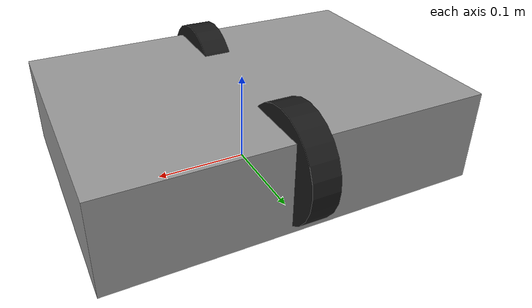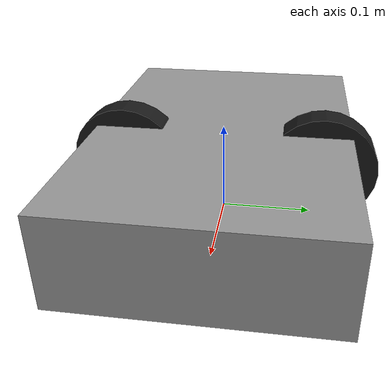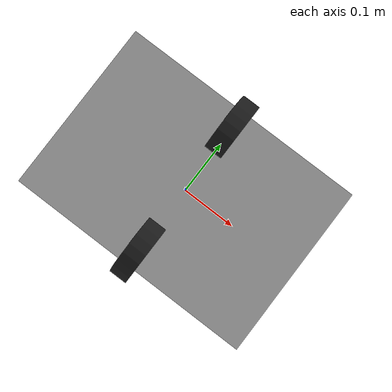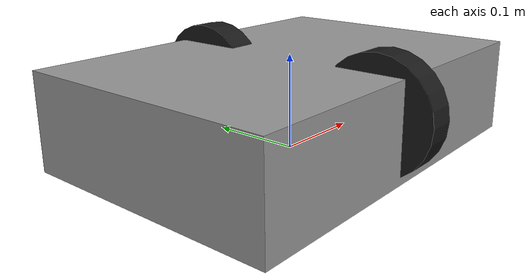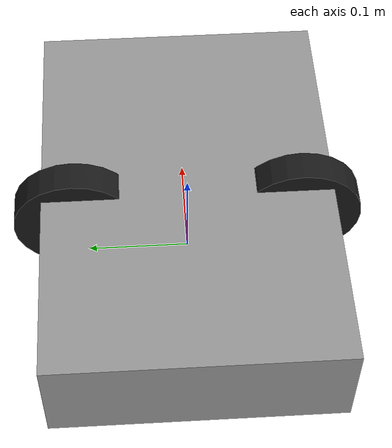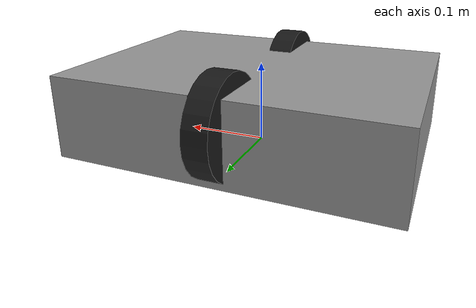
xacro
<?xml version="1.0"?>
<robot xmlns:xacro="http://www.ros.org/wiki/xacro" name="my_bot">

  <!-- ====== Parameters ====== -->
  <xacro:property name="base_length" value="0.40"/>
  <xacro:property name="base_width"  value="0.28"/>
  <xacro:property name="base_height" value="0.10"/>

  <xacro:property name="wheel_radius" value="0.06"/>
  <xacro:property name="wheel_width"  value="0.03"/>
  <xacro:property name="wheel_separation" value="0.22"/> <!-- distance between wheel centers -->

  <xacro:property name="base_mass" value="5.0"/>
  <xacro:property name="wheel_mass" value="0.5"/>

  <!-- ====== Materials ====== -->
  <material name="gray"><color rgba="0.6 0.6 0.6 1"/></material>
  <material name="black"><color rgba="0.1 0.1 0.1 1"/></material>

  <!-- ====== Links ====== -->
  <link name="base_link">
    <visual>
      <origin xyz="0 0 ${base_height/2}" rpy="0 0 0"/>
      <geometry>
        <box size="${base_length} ${base_width} ${base_height}"/>
      </geometry>
      <material name="gray"/>
    </visual>
    <collision>
      <origin xyz="0 0 ${base_height/2}" rpy="0 0 0"/>
      <geometry>
        <box size="${base_length} ${base_width} ${base_height}"/>
      </geometry>
    </collision>
    <inertial>
      <origin xyz="0 0 ${base_height/2}" rpy="0 0 0"/>
      <mass value="${base_mass}"/>
      <!-- simple box inertia approximation -->
      <inertia
        ixx="${(1/12) * base_mass * (base_width*base_width + base_height*base_height)}"
        iyy="${(1/12) * base_mass * (base_length*base_length + base_height*base_height)}"
        izz="${(1/12) * base_mass * (base_length*base_length + base_width*base_width)}"
        ixy="0" ixz="0" iyz="0"/>
    </inertial>
  </link>

  <link name="left_wheel_link">
    <visual>
      <origin xyz="0 0 0" rpy="0 1.57079632679 0"/>
      <geometry>
        <cylinder radius="${wheel_radius}" length="${wheel_width}"/>
      </geometry>
      <material name="black"/>
    </visual>
    <collision>
      <origin xyz="0 0 0" rpy="0 1.57079632679 0"/>
      <geometry>
        <cylinder radius="${wheel_radius}" length="${wheel_width}"/>
      </geometry>
    </collision>
    <inertial>
      <mass value="${wheel_mass}"/>
      <inertia ixx="0.001" iyy="0.001" izz="0.001" ixy="0" ixz="0" iyz="0"/>
    </inertial>
  </link>

  <link name="right_wheel_link">
    <visual>
      <origin xyz="0 0 0" rpy="0 1.57079632679 0"/>
      <geometry>
        <cylinder radius="${wheel_radius}" length="${wheel_width}"/>
      </geometry>
      <material name="black"/>
    </visual>
    <collision>
      <origin xyz="0 0 0" rpy="0 1.57079632679 0"/>
      <geometry>
        <cylinder radius="${wheel_radius}" length="${wheel_width}"/>
      </geometry>
    </collision>
    <inertial>
      <mass value="${wheel_mass}"/>
      <inertia ixx="0.001" iyy="0.001" izz="0.001" ixy="0" ixz="0" iyz="0"/>
    </inertial>
  </link>

  <!-- ====== Joints ====== -->
  <joint name="left_wheel_joint" type="continuous">
    <parent link="base_link"/>
    <child link="left_wheel_link"/>
    <origin xyz="0 ${wheel_separation/2} ${wheel_radius}" rpy="0 0 0"/>
    <axis xyz="0 1 0"/>
  </joint>

  <joint name="right_wheel_joint" type="continuous">
    <parent link="base_link"/>
    <child link="right_wheel_link"/>
    <origin xyz="0 ${-wheel_separation/2} ${wheel_radius}" rpy="0 0 0"/>
    <axis xyz="0 1 0"/>
  </joint>

  <!-- ====== ros2_control (what diff_drive_controller talks to) ====== -->
  <ros2_control name="MyBotSystem" type="system">
    <hardware>
      <!-- Gazebo plugin will simulate this hardware -->
      <plugin>gazebo_ros2_control/GazeboSystem</plugin>
    </hardware>

    <joint name="left_wheel_joint">
      <command_interface name="velocity"/>
      <state_interface name="velocity"/>
      <state_interface name="position"/>
    </joint>

    <joint name="right_wheel_joint">
      <command_interface name="velocity"/>
      <state_interface name="velocity"/>
      <state_interface name="position"/>
    </joint>
  </ros2_control>

  <!-- ====== Gazebo plugin hook for ros2_control ====== -->
  <gazebo>
    <plugin name="gazebo_ros2_control" filename="libgazebo_ros2_control.so">
      <!-- controller_manager reads robot_description -->
      <robot_param>robot_description</robot_param>
      <robot_param_node>robot_state_publisher</robot_param_node>
    </plugin>
  </gazebo>

</robot>
